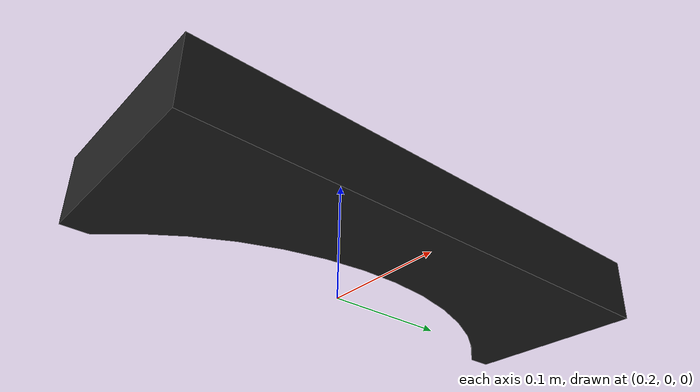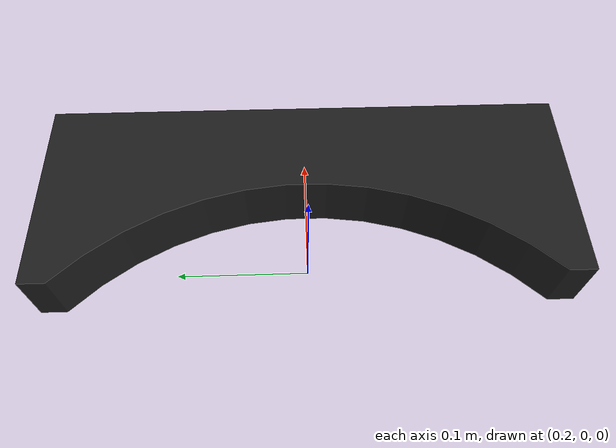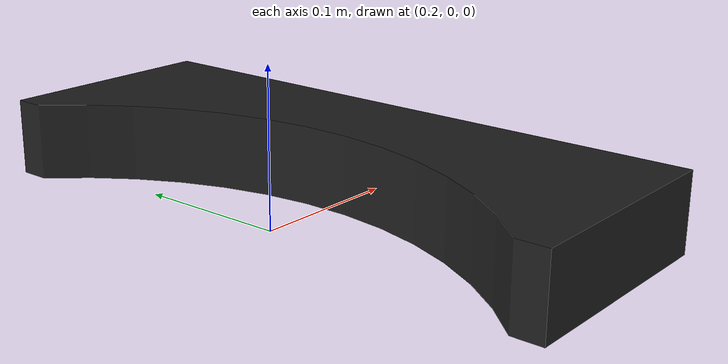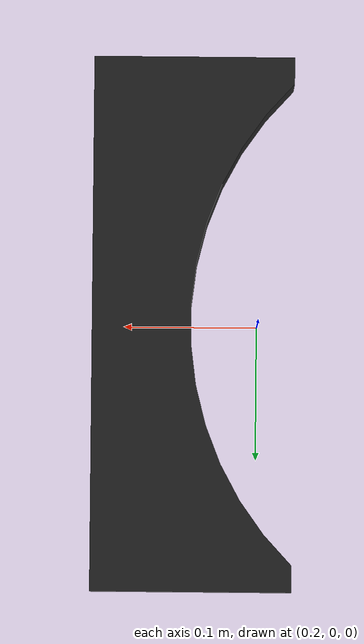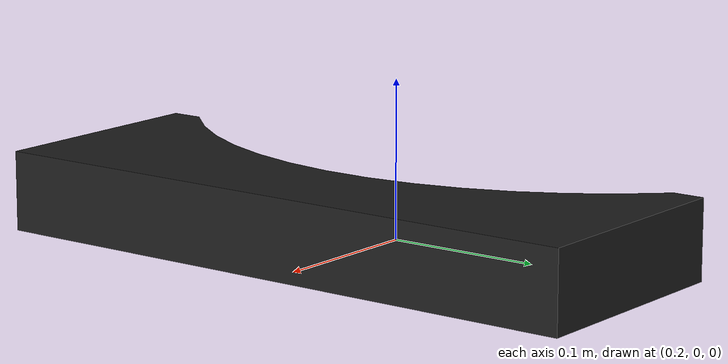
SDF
<sdf version="1.4">
  <model name="dock_circular">
    <static>true</static>
    <link name="link">
      <collision name="colision1">
        <pose>0 0 0 0 0 0</pose>
        <geometry>
          <mesh>
            <uri>model://dock_circular/meshes/dock_circular.stl</uri>
            <scale> 1 1 1 </scale>
          </mesh>
        </geometry>
        <surface>
          <bounce />
          <friction>
            <ode />
          </friction>
          <contact>
            <ode />
          </contact>
        </surface>
      </collision>

      <visual name="visual1">
        <pose>0 0 0 0 0 0</pose>
        <geometry>
          <mesh>
            <uri>model://dock_circular/meshes/dock_circular.stl</uri>
            <scale> 1 1 1 </scale>
          </mesh>
        </geometry>
        <material>
          <script>
            <uri>file://media/materials/scripts/gazebo.material</uri>
            <name>Gazebo/FlatBlack</name>
          </script>
        </material>
      </visual>

      <velocity_decay>
        <linear>0.000000</linear>
        <angular>0.000000</angular>
      </velocity_decay>
      <self_collide>0</self_collide>
      <kinematic>0</kinematic>
      <gravity>1</gravity>
    </link>
  </model>
</sdf>
